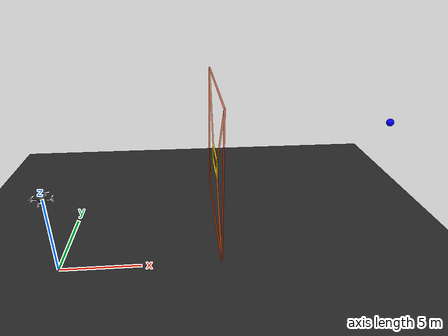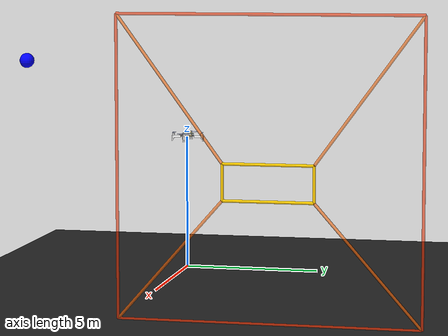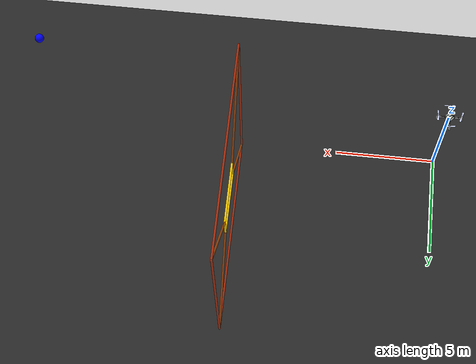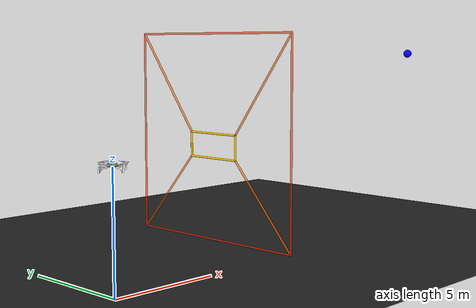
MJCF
<mujoco model="CF2 scene">
  <include file="cf2.xml"/>

  <statistic center="0 0 0.1" extent="0.2" meansize=".05"/>

  <visual>
    <rgba haze="0.15 0.25 0.35 0"/>
    <global azimuth="-20" elevation="-20" ellipsoidinertia="true"/>
    <map zfar="1000"/>
  </visual>

  <asset>
    <texture type="skybox" builtin="gradient" rgb1="0.3 0.5 0.7" rgb2="0 0 0" width="512" height="3072"/>
    <texture type="2d" name="groundplane" builtin="checker" mark="edge" rgb1="0.1 0.1 0.1" rgb2="0.2 0.2 0.2"
      markrgb="0.8 0.8 0.8" width="300" height="300"/>
    <material name="groundplane" texture="groundplane" texuniform="true" texrepeat="5 5" reflectance="0.1"/>
  </asset>

  <worldbody>
    <light diffuse="1 1 1" ambient="1 1 1" pos="0 0 100" dir="0 0 -1" directional="false"/>
    <geom name="floor" size="0 0 0.05" type="plane" material="groundplane"/>
    <site name="x_axis" size="0.005" type="cylinder" fromto="0 0 0 1 0 0" rgba="1 0 0 1"/>  <!-- X-axis: Red -->
    <site name="y_axis" size="0.005" type="cylinder" fromto="0 0 0 0 1 0" rgba="0 1 0 1"/>  <!-- Y-axis: Green -->
    <site name="z_axis" size="0.005" type="cylinder" fromto="0 0 0 0 0 1" rgba="0 0 1 1"/>  <!-- Z-axis: Blue -->

    <site name="target" size="0.2" type="sphere" pos="19 0 9" rgba="0 0 1 1"/>

    <geom name="bar_1" size="0.05" type="cylinder" fromto="10 3.5 4 10 3.5 5.2" rgba="1 0.8 0 1"/>
    <geom name="bar_2" size="0.05" type="cylinder" fromto="10 3.5 5.2 10 6.5 5.2" rgba="1 0.8 0 1"/>
    <geom name="bar_3" size="0.05" type="cylinder" fromto="10 6.5 5.2 10 6.5 4" rgba="1 0.8 0 1"/>
    <geom name="bar_4" size="0.05" type="cylinder" fromto="10 6.5 4 10 3.5 4" rgba="1 0.8 0 1"/>

    <geom name="bar_5" size="0.05" type="cylinder" fromto="10 0 0 10 10 0" rgba="1 0.2 0 0.6"/>
    <geom name="bar_6" size="0.05" type="cylinder" fromto="10 10 0 10 10 10" rgba="1 0.2 0 0.6"/>
    <geom name="bar_7" size="0.05" type="cylinder" fromto="10 10 10 10 0 10" rgba="1 0.2 0 0.6"/>
    <geom name="bar_8" size="0.05" type="cylinder" fromto="10 0 10 10 0 0" rgba="1 0.2 0 0.6"/>

    <geom name="bar_9" size="0.05" type="cylinder" fromto="10 0 0 10 3.5 4" rgba="1 0.4 0 0.6"/>
    <geom name="bar_10" size="0.05" type="cylinder" fromto="10 10 0 10 6.5 4" rgba="1 0.4 0 0.6"/>
    <geom name="bar_11" size="0.05" type="cylinder" fromto="10 10 10 10 6.5 5.2" rgba="1 0.4 0 0.6"/>
    <geom name="bar_12" size="0.05" type="cylinder" fromto="10 0 10 10 3.5 5.2" rgba="1 0.4 0 0.6"/>

  </worldbody>
</mujoco>

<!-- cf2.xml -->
<mujoco model="cf2">
  <option integrator="RK4" density="1.225" viscosity="1.8e-5" timestep="0.1"/>

  <compiler inertiafromgeom="false" meshdir="assets" autolimits="true"/>

  <default>
    <default class="cf2">
      <default class="visual">
        <geom group="2" type="mesh" contype="0" conaffinity="0"/>
      </default>
      <default class="collision">
        <geom group="3" type="mesh"/>
      </default>
      <site group="5"/>
    </default>
  </default>

  <asset>
    <material name="polished_plastic" rgba="0.631 0.659 0.678 1"/>
    <material name="polished_gold" rgba="0.969 0.878 0.6 1"/>
    <material name="medium_gloss_plastic" rgba="0.109 0.184 0.0 1"/>
    <material name="propeller_plastic" rgba="0.792 0.820 0.933 1"/>
    <material name="white" rgba="1 1 1 1"/>
    <material name="body_frame_plastic" rgba="0.102 0.102 0.102 1"/>
    <material name="burnished_chrome" rgba="0.898 0.898 0.898 1"/>

    <mesh file="cf2_0.obj"/>
    <mesh file="cf2_1.obj"/>
    <mesh file="cf2_2.obj"/>
    <mesh file="cf2_3.obj"/>
    <mesh file="cf2_4.obj"/>
    <mesh file="cf2_5.obj"/>
    <mesh file="cf2_6.obj"/>
    <mesh file="cf2_collision_0.obj"/>
    <mesh file="cf2_collision_1.obj"/>
    <mesh file="cf2_collision_2.obj"/>
    <mesh file="cf2_collision_3.obj"/>
    <mesh file="cf2_collision_4.obj"/>
    <mesh file="cf2_collision_5.obj"/>
    <mesh file="cf2_collision_6.obj"/>
    <mesh file="cf2_collision_7.obj"/>
    <mesh file="cf2_collision_8.obj"/>
    <mesh file="cf2_collision_9.obj"/>
    <mesh file="cf2_collision_10.obj"/>
    <mesh file="cf2_collision_11.obj"/>
    <mesh file="cf2_collision_12.obj"/>
    <mesh file="cf2_collision_13.obj"/>
    <mesh file="cf2_collision_14.obj"/>
    <mesh file="cf2_collision_15.obj"/>
    <mesh file="cf2_collision_16.obj"/>
    <mesh file="cf2_collision_17.obj"/>
    <mesh file="cf2_collision_18.obj"/>
    <mesh file="cf2_collision_19.obj"/>
    <mesh file="cf2_collision_20.obj"/>
    <mesh file="cf2_collision_21.obj"/>
    <mesh file="cf2_collision_22.obj"/>
    <mesh file="cf2_collision_23.obj"/>
    <mesh file="cf2_collision_24.obj"/>
    <mesh file="cf2_collision_25.obj"/>
    <mesh file="cf2_collision_26.obj"/>
    <mesh file="cf2_collision_27.obj"/>
    <mesh file="cf2_collision_28.obj"/>
    <mesh file="cf2_collision_29.obj"/>
    <mesh file="cf2_collision_30.obj"/>
    <mesh file="cf2_collision_31.obj"/>
  </asset>

  <worldbody>
    <body name="cf2" pos="0 0.0 5.0" childclass="cf2">
      <freejoint/>
      <inertial pos="0 0 0" mass="0.1" diaginertia="1e-2 1e-2 1e-2"/>
      <camera name="track_cf2" pos="-10  0 1" fovy="60" xyaxes="0 -1 0 0 0 1" mode="trackcom"/>
      <geom mesh="cf2_0" material="propeller_plastic" class="visual"/>
      <geom mesh="cf2_1" material="medium_gloss_plastic" class="visual"/>
      <geom mesh="cf2_2" material="polished_gold" class="visual"/>
      <geom mesh="cf2_3" material="polished_plastic" class="visual"/>
      <geom mesh="cf2_4" material="burnished_chrome" class="visual"/>
      <geom mesh="cf2_5" material="body_frame_plastic" class="visual"/>
      <geom mesh="cf2_6" material="white" class="visual"/>
      <geom mesh="cf2_collision_0" class="collision"/>
      <geom mesh="cf2_collision_1" class="collision"/>
      <geom mesh="cf2_collision_2" class="collision"/>
      <geom mesh="cf2_collision_3" class="collision"/>
      <geom mesh="cf2_collision_4" class="collision"/>
      <geom mesh="cf2_collision_5" class="collision"/>
      <geom mesh="cf2_collision_6" class="collision"/>
      <geom mesh="cf2_collision_7" class="collision"/>
      <geom mesh="cf2_collision_8" class="collision"/>
      <geom mesh="cf2_collision_9" class="collision"/>
      <geom mesh="cf2_collision_10" class="collision"/>
      <geom mesh="cf2_collision_11" class="collision"/>
      <geom mesh="cf2_collision_12" class="collision"/>
      <geom mesh="cf2_collision_13" class="collision"/>
      <geom mesh="cf2_collision_14" class="collision"/>
      <geom mesh="cf2_collision_15" class="collision"/>
      <geom mesh="cf2_collision_16" class="collision"/>
      <geom mesh="cf2_collision_17" class="collision"/>
      <geom mesh="cf2_collision_18" class="collision"/>
      <geom mesh="cf2_collision_19" class="collision"/>
      <geom mesh="cf2_collision_20" class="collision"/>
      <geom mesh="cf2_collision_21" class="collision"/>
      <geom mesh="cf2_collision_22" class="collision"/>
      <geom mesh="cf2_collision_23" class="collision"/>
      <geom mesh="cf2_collision_24" class="collision"/>
      <geom mesh="cf2_collision_25" class="collision"/>
      <geom mesh="cf2_collision_26" class="collision"/>
      <geom mesh="cf2_collision_27" class="collision"/>
      <geom mesh="cf2_collision_28" class="collision"/>
      <geom mesh="cf2_collision_29" class="collision"/>
      <geom mesh="cf2_collision_30" class="collision"/>
      <geom mesh="cf2_collision_31" class="collision"/>
      <site name="imu"/>
      <site name="actuation"/>
    </body>
  </worldbody>

  <actuator>
    <motor class="cf2" gear="0 0 1 0 0 0" site="actuation" name="body_thrust"/>
    <motor class="cf2" gear="0 0 0 1 0 0" site="actuation" name="x_moment"/>
    <motor class="cf2" gear="0 0 0 0 1 0" site="actuation" name="y_moment"/>
    <motor class="cf2" gear="0 0 0 0 0 1" site="actuation" name="z_moment"/>
  </actuator>

  <sensor>
    <gyro name="body_gyro" site="imu"/>
    <accelerometer name="body_linacc" site="imu"/>
    <framequat name="body_quat" objtype="site" objname="imu"/>
  </sensor>

  <keyframe>
    <key name="hover" qpos="0 0 0.1 1 0 0 0" ctrl="0.26487 0 0 0"/>
  </keyframe>
</mujoco>
